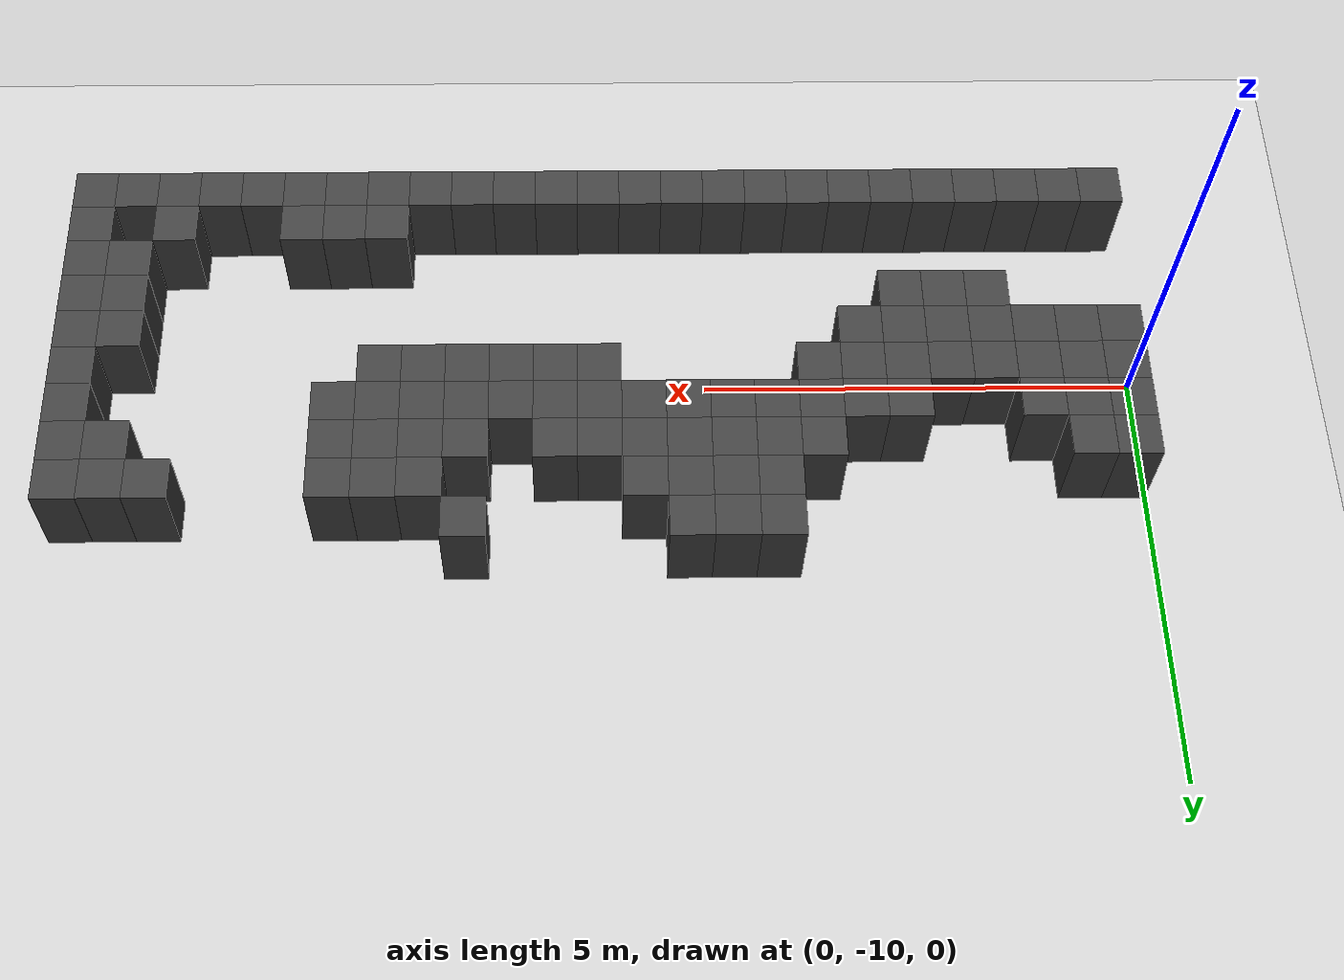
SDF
<sdf version="1.7">
 <world name="map_5937">
  <model name="ground_plane">
   <static>true</static>
   <link name="link">
    <collision name="collision">
     <geometry><plane><normal>0 0 1</normal><size>200 200</size></plane></geometry>
    </collision>
    <visual name="visual">
     <geometry><plane><normal>0 0 1</normal><size>200 200</size></plane></geometry>
     <material><ambient>0.8 0.8 0.8 1</ambient><diffuse>0.8 0.8 0.8 1</diffuse></material>
    </visual>
   </link>
  </model>
  <model name="maze_environment">
   <static>true</static>
   <link name="wall_368">
    <pose>4.250 -7.750 0.500 0 0 0</pose>
    <collision name="col"><geometry><box><size>0.5 0.5 1.0</size></box></geometry></collision>
    <visual name="vis">
     <geometry><box><size>0.5 0.5 1.0</size></box></geometry>
     <material><ambient>0.15 0.15 0.15 1</ambient><diffuse>0.25 0.25 0.25 1</diffuse></material>
    </visual>
   </link>
   <link name="wall_369">
    <pose>4.750 -7.750 0.500 0 0 0</pose>
    <collision name="col"><geometry><box><size>0.5 0.5 1.0</size></box></geometry></collision>
    <visual name="vis">
     <geometry><box><size>0.5 0.5 1.0</size></box></geometry>
     <material><ambient>0.15 0.15 0.15 1</ambient><diffuse>0.25 0.25 0.25 1</diffuse></material>
    </visual>
   </link>
   <link name="wall_370">
    <pose>5.250 -7.750 0.500 0 0 0</pose>
    <collision name="col"><geometry><box><size>0.5 0.5 1.0</size></box></geometry></collision>
    <visual name="vis">
     <geometry><box><size>0.5 0.5 1.0</size></box></geometry>
     <material><ambient>0.15 0.15 0.15 1</ambient><diffuse>0.25 0.25 0.25 1</diffuse></material>
    </visual>
   </link>
   <link name="wall_371">
    <pose>7.750 -7.750 0.500 0 0 0</pose>
    <collision name="col"><geometry><box><size>0.5 0.5 1.0</size></box></geometry></collision>
    <visual name="vis">
     <geometry><box><size>0.5 0.5 1.0</size></box></geometry>
     <material><ambient>0.15 0.15 0.15 1</ambient><diffuse>0.25 0.25 0.25 1</diffuse></material>
    </visual>
   </link>
   <link name="wall_388">
    <pose>4.250 -8.250 0.500 0 0 0</pose>
    <collision name="col"><geometry><box><size>0.5 0.5 1.0</size></box></geometry></collision>
    <visual name="vis">
     <geometry><box><size>0.5 0.5 1.0</size></box></geometry>
     <material><ambient>0.15 0.15 0.15 1</ambient><diffuse>0.25 0.25 0.25 1</diffuse></material>
    </visual>
   </link>
   <link name="wall_389">
    <pose>4.750 -8.250 0.500 0 0 0</pose>
    <collision name="col"><geometry><box><size>0.5 0.5 1.0</size></box></geometry></collision>
    <visual name="vis">
     <geometry><box><size>0.5 0.5 1.0</size></box></geometry>
     <material><ambient>0.15 0.15 0.15 1</ambient><diffuse>0.25 0.25 0.25 1</diffuse></material>
    </visual>
   </link>
   <link name="wall_390">
    <pose>5.250 -8.250 0.500 0 0 0</pose>
    <collision name="col"><geometry><box><size>0.5 0.5 1.0</size></box></geometry></collision>
    <visual name="vis">
     <geometry><box><size>0.5 0.5 1.0</size></box></geometry>
     <material><ambient>0.15 0.15 0.15 1</ambient><diffuse>0.25 0.25 0.25 1</diffuse></material>
    </visual>
   </link>
   <link name="wall_391">
    <pose>5.750 -8.250 0.500 0 0 0</pose>
    <collision name="col"><geometry><box><size>0.5 0.5 1.0</size></box></geometry></collision>
    <visual name="vis">
     <geometry><box><size>0.5 0.5 1.0</size></box></geometry>
     <material><ambient>0.15 0.15 0.15 1</ambient><diffuse>0.25 0.25 0.25 1</diffuse></material>
    </visual>
   </link>
   <link name="wall_392">
    <pose>8.250 -8.250 0.500 0 0 0</pose>
    <collision name="col"><geometry><box><size>0.5 0.5 1.0</size></box></geometry></collision>
    <visual name="vis">
     <geometry><box><size>0.5 0.5 1.0</size></box></geometry>
     <material><ambient>0.15 0.15 0.15 1</ambient><diffuse>0.25 0.25 0.25 1</diffuse></material>
    </visual>
   </link>
   <link name="wall_393">
    <pose>8.750 -8.250 0.500 0 0 0</pose>
    <collision name="col"><geometry><box><size>0.5 0.5 1.0</size></box></geometry></collision>
    <visual name="vis">
     <geometry><box><size>0.5 0.5 1.0</size></box></geometry>
     <material><ambient>0.15 0.15 0.15 1</ambient><diffuse>0.25 0.25 0.25 1</diffuse></material>
    </visual>
   </link>
   <link name="wall_394">
    <pose>9.250 -8.250 0.500 0 0 0</pose>
    <collision name="col"><geometry><box><size>0.5 0.5 1.0</size></box></geometry></collision>
    <visual name="vis">
     <geometry><box><size>0.5 0.5 1.0</size></box></geometry>
     <material><ambient>0.15 0.15 0.15 1</ambient><diffuse>0.25 0.25 0.25 1</diffuse></material>
    </visual>
   </link>
   <link name="wall_395">
    <pose>11.250 -8.250 0.500 0 0 0</pose>
    <collision name="col"><geometry><box><size>0.5 0.5 1.0</size></box></geometry></collision>
    <visual name="vis">
     <geometry><box><size>0.5 0.5 1.0</size></box></geometry>
     <material><ambient>0.15 0.15 0.15 1</ambient><diffuse>0.25 0.25 0.25 1</diffuse></material>
    </visual>
   </link>
   <link name="wall_396">
    <pose>11.750 -8.250 0.500 0 0 0</pose>
    <collision name="col"><geometry><box><size>0.5 0.5 1.0</size></box></geometry></collision>
    <visual name="vis">
     <geometry><box><size>0.5 0.5 1.0</size></box></geometry>
     <material><ambient>0.15 0.15 0.15 1</ambient><diffuse>0.25 0.25 0.25 1</diffuse></material>
    </visual>
   </link>
   <link name="wall_397">
    <pose>12.250 -8.250 0.500 0 0 0</pose>
    <collision name="col"><geometry><box><size>0.5 0.5 1.0</size></box></geometry></collision>
    <visual name="vis">
     <geometry><box><size>0.5 0.5 1.0</size></box></geometry>
     <material><ambient>0.15 0.15 0.15 1</ambient><diffuse>0.25 0.25 0.25 1</diffuse></material>
    </visual>
   </link>
   <link name="wall_403">
    <pose>0.250 -8.750 0.500 0 0 0</pose>
    <collision name="col"><geometry><box><size>0.5 0.5 1.0</size></box></geometry></collision>
    <visual name="vis">
     <geometry><box><size>0.5 0.5 1.0</size></box></geometry>
     <material><ambient>0.15 0.15 0.15 1</ambient><diffuse>0.25 0.25 0.25 1</diffuse></material>
    </visual>
   </link>
   <link name="wall_404">
    <pose>0.750 -8.750 0.500 0 0 0</pose>
    <collision name="col"><geometry><box><size>0.5 0.5 1.0</size></box></geometry></collision>
    <visual name="vis">
     <geometry><box><size>0.5 0.5 1.0</size></box></geometry>
     <material><ambient>0.15 0.15 0.15 1</ambient><diffuse>0.25 0.25 0.25 1</diffuse></material>
    </visual>
   </link>
   <link name="wall_405">
    <pose>3.750 -8.750 0.500 0 0 0</pose>
    <collision name="col"><geometry><box><size>0.5 0.5 1.0</size></box></geometry></collision>
    <visual name="vis">
     <geometry><box><size>0.5 0.5 1.0</size></box></geometry>
     <material><ambient>0.15 0.15 0.15 1</ambient><diffuse>0.25 0.25 0.25 1</diffuse></material>
    </visual>
   </link>
   <link name="wall_406">
    <pose>4.250 -8.750 0.500 0 0 0</pose>
    <collision name="col"><geometry><box><size>0.5 0.5 1.0</size></box></geometry></collision>
    <visual name="vis">
     <geometry><box><size>0.5 0.5 1.0</size></box></geometry>
     <material><ambient>0.15 0.15 0.15 1</ambient><diffuse>0.25 0.25 0.25 1</diffuse></material>
    </visual>
   </link>
   <link name="wall_407">
    <pose>4.750 -8.750 0.500 0 0 0</pose>
    <collision name="col"><geometry><box><size>0.5 0.5 1.0</size></box></geometry></collision>
    <visual name="vis">
     <geometry><box><size>0.5 0.5 1.0</size></box></geometry>
     <material><ambient>0.15 0.15 0.15 1</ambient><diffuse>0.25 0.25 0.25 1</diffuse></material>
    </visual>
   </link>
   <link name="wall_408">
    <pose>5.250 -8.750 0.500 0 0 0</pose>
    <collision name="col"><geometry><box><size>0.5 0.5 1.0</size></box></geometry></collision>
    <visual name="vis">
     <geometry><box><size>0.5 0.5 1.0</size></box></geometry>
     <material><ambient>0.15 0.15 0.15 1</ambient><diffuse>0.25 0.25 0.25 1</diffuse></material>
    </visual>
   </link>
   <link name="wall_409">
    <pose>5.750 -8.750 0.500 0 0 0</pose>
    <collision name="col"><geometry><box><size>0.5 0.5 1.0</size></box></geometry></collision>
    <visual name="vis">
     <geometry><box><size>0.5 0.5 1.0</size></box></geometry>
     <material><ambient>0.15 0.15 0.15 1</ambient><diffuse>0.25 0.25 0.25 1</diffuse></material>
    </visual>
   </link>
   <link name="wall_410">
    <pose>6.250 -8.750 0.500 0 0 0</pose>
    <collision name="col"><geometry><box><size>0.5 0.5 1.0</size></box></geometry></collision>
    <visual name="vis">
     <geometry><box><size>0.5 0.5 1.0</size></box></geometry>
     <material><ambient>0.15 0.15 0.15 1</ambient><diffuse>0.25 0.25 0.25 1</diffuse></material>
    </visual>
   </link>
   <link name="wall_411">
    <pose>6.750 -8.750 0.500 0 0 0</pose>
    <collision name="col"><geometry><box><size>0.5 0.5 1.0</size></box></geometry></collision>
    <visual name="vis">
     <geometry><box><size>0.5 0.5 1.0</size></box></geometry>
     <material><ambient>0.15 0.15 0.15 1</ambient><diffuse>0.25 0.25 0.25 1</diffuse></material>
    </visual>
   </link>
   <link name="wall_412">
    <pose>7.750 -8.750 0.500 0 0 0</pose>
    <collision name="col"><geometry><box><size>0.5 0.5 1.0</size></box></geometry></collision>
    <visual name="vis">
     <geometry><box><size>0.5 0.5 1.0</size></box></geometry>
     <material><ambient>0.15 0.15 0.15 1</ambient><diffuse>0.25 0.25 0.25 1</diffuse></material>
    </visual>
   </link>
   <link name="wall_413">
    <pose>8.250 -8.750 0.500 0 0 0</pose>
    <collision name="col"><geometry><box><size>0.5 0.5 1.0</size></box></geometry></collision>
    <visual name="vis">
     <geometry><box><size>0.5 0.5 1.0</size></box></geometry>
     <material><ambient>0.15 0.15 0.15 1</ambient><diffuse>0.25 0.25 0.25 1</diffuse></material>
    </visual>
   </link>
   <link name="wall_414">
    <pose>8.750 -8.750 0.500 0 0 0</pose>
    <collision name="col"><geometry><box><size>0.5 0.5 1.0</size></box></geometry></collision>
    <visual name="vis">
     <geometry><box><size>0.5 0.5 1.0</size></box></geometry>
     <material><ambient>0.15 0.15 0.15 1</ambient><diffuse>0.25 0.25 0.25 1</diffuse></material>
    </visual>
   </link>
   <link name="wall_415">
    <pose>9.250 -8.750 0.500 0 0 0</pose>
    <collision name="col"><geometry><box><size>0.5 0.5 1.0</size></box></geometry></collision>
    <visual name="vis">
     <geometry><box><size>0.5 0.5 1.0</size></box></geometry>
     <material><ambient>0.15 0.15 0.15 1</ambient><diffuse>0.25 0.25 0.25 1</diffuse></material>
    </visual>
   </link>
   <link name="wall_416">
    <pose>11.750 -8.750 0.500 0 0 0</pose>
    <collision name="col"><geometry><box><size>0.5 0.5 1.0</size></box></geometry></collision>
    <visual name="vis">
     <geometry><box><size>0.5 0.5 1.0</size></box></geometry>
     <material><ambient>0.15 0.15 0.15 1</ambient><diffuse>0.25 0.25 0.25 1</diffuse></material>
    </visual>
   </link>
   <link name="wall_417">
    <pose>12.250 -8.750 0.500 0 0 0</pose>
    <collision name="col"><geometry><box><size>0.5 0.5 1.0</size></box></geometry></collision>
    <visual name="vis">
     <geometry><box><size>0.5 0.5 1.0</size></box></geometry>
     <material><ambient>0.15 0.15 0.15 1</ambient><diffuse>0.25 0.25 0.25 1</diffuse></material>
    </visual>
   </link>
   <link name="wall_420">
    <pose>0.250 -9.250 0.500 0 0 0</pose>
    <collision name="col"><geometry><box><size>0.5 0.5 1.0</size></box></geometry></collision>
    <visual name="vis">
     <geometry><box><size>0.5 0.5 1.0</size></box></geometry>
     <material><ambient>0.15 0.15 0.15 1</ambient><diffuse>0.25 0.25 0.25 1</diffuse></material>
    </visual>
   </link>
   <link name="wall_421">
    <pose>0.750 -9.250 0.500 0 0 0</pose>
    <collision name="col"><geometry><box><size>0.5 0.5 1.0</size></box></geometry></collision>
    <visual name="vis">
     <geometry><box><size>0.5 0.5 1.0</size></box></geometry>
     <material><ambient>0.15 0.15 0.15 1</ambient><diffuse>0.25 0.25 0.25 1</diffuse></material>
    </visual>
   </link>
   <link name="wall_422">
    <pose>1.250 -9.250 0.500 0 0 0</pose>
    <collision name="col"><geometry><box><size>0.5 0.5 1.0</size></box></geometry></collision>
    <visual name="vis">
     <geometry><box><size>0.5 0.5 1.0</size></box></geometry>
     <material><ambient>0.15 0.15 0.15 1</ambient><diffuse>0.25 0.25 0.25 1</diffuse></material>
    </visual>
   </link>
   <link name="wall_423">
    <pose>2.750 -9.250 0.500 0 0 0</pose>
    <collision name="col"><geometry><box><size>0.5 0.5 1.0</size></box></geometry></collision>
    <visual name="vis">
     <geometry><box><size>0.5 0.5 1.0</size></box></geometry>
     <material><ambient>0.15 0.15 0.15 1</ambient><diffuse>0.25 0.25 0.25 1</diffuse></material>
    </visual>
   </link>
   <link name="wall_424">
    <pose>3.250 -9.250 0.500 0 0 0</pose>
    <collision name="col"><geometry><box><size>0.5 0.5 1.0</size></box></geometry></collision>
    <visual name="vis">
     <geometry><box><size>0.5 0.5 1.0</size></box></geometry>
     <material><ambient>0.15 0.15 0.15 1</ambient><diffuse>0.25 0.25 0.25 1</diffuse></material>
    </visual>
   </link>
   <link name="wall_425">
    <pose>3.750 -9.250 0.500 0 0 0</pose>
    <collision name="col"><geometry><box><size>0.5 0.5 1.0</size></box></geometry></collision>
    <visual name="vis">
     <geometry><box><size>0.5 0.5 1.0</size></box></geometry>
     <material><ambient>0.15 0.15 0.15 1</ambient><diffuse>0.25 0.25 0.25 1</diffuse></material>
    </visual>
   </link>
   <link name="wall_426">
    <pose>4.250 -9.250 0.500 0 0 0</pose>
    <collision name="col"><geometry><box><size>0.5 0.5 1.0</size></box></geometry></collision>
    <visual name="vis">
     <geometry><box><size>0.5 0.5 1.0</size></box></geometry>
     <material><ambient>0.15 0.15 0.15 1</ambient><diffuse>0.25 0.25 0.25 1</diffuse></material>
    </visual>
   </link>
   <link name="wall_427">
    <pose>4.750 -9.250 0.500 0 0 0</pose>
    <collision name="col"><geometry><box><size>0.5 0.5 1.0</size></box></geometry></collision>
    <visual name="vis">
     <geometry><box><size>0.5 0.5 1.0</size></box></geometry>
     <material><ambient>0.15 0.15 0.15 1</ambient><diffuse>0.25 0.25 0.25 1</diffuse></material>
    </visual>
   </link>
   <link name="wall_428">
    <pose>5.250 -9.250 0.500 0 0 0</pose>
    <collision name="col"><geometry><box><size>0.5 0.5 1.0</size></box></geometry></collision>
    <visual name="vis">
     <geometry><box><size>0.5 0.5 1.0</size></box></geometry>
     <material><ambient>0.15 0.15 0.15 1</ambient><diffuse>0.25 0.25 0.25 1</diffuse></material>
    </visual>
   </link>
   <link name="wall_429">
    <pose>5.750 -9.250 0.500 0 0 0</pose>
    <collision name="col"><geometry><box><size>0.5 0.5 1.0</size></box></geometry></collision>
    <visual name="vis">
     <geometry><box><size>0.5 0.5 1.0</size></box></geometry>
     <material><ambient>0.15 0.15 0.15 1</ambient><diffuse>0.25 0.25 0.25 1</diffuse></material>
    </visual>
   </link>
   <link name="wall_430">
    <pose>6.250 -9.250 0.500 0 0 0</pose>
    <collision name="col"><geometry><box><size>0.5 0.5 1.0</size></box></geometry></collision>
    <visual name="vis">
     <geometry><box><size>0.5 0.5 1.0</size></box></geometry>
     <material><ambient>0.15 0.15 0.15 1</ambient><diffuse>0.25 0.25 0.25 1</diffuse></material>
    </visual>
   </link>
   <link name="wall_431">
    <pose>6.750 -9.250 0.500 0 0 0</pose>
    <collision name="col"><geometry><box><size>0.5 0.5 1.0</size></box></geometry></collision>
    <visual name="vis">
     <geometry><box><size>0.5 0.5 1.0</size></box></geometry>
     <material><ambient>0.15 0.15 0.15 1</ambient><diffuse>0.25 0.25 0.25 1</diffuse></material>
    </visual>
   </link>
   <link name="wall_432">
    <pose>7.250 -9.250 0.500 0 0 0</pose>
    <collision name="col"><geometry><box><size>0.5 0.5 1.0</size></box></geometry></collision>
    <visual name="vis">
     <geometry><box><size>0.5 0.5 1.0</size></box></geometry>
     <material><ambient>0.15 0.15 0.15 1</ambient><diffuse>0.25 0.25 0.25 1</diffuse></material>
    </visual>
   </link>
   <link name="wall_433">
    <pose>7.750 -9.250 0.500 0 0 0</pose>
    <collision name="col"><geometry><box><size>0.5 0.5 1.0</size></box></geometry></collision>
    <visual name="vis">
     <geometry><box><size>0.5 0.5 1.0</size></box></geometry>
     <material><ambient>0.15 0.15 0.15 1</ambient><diffuse>0.25 0.25 0.25 1</diffuse></material>
    </visual>
   </link>
   <link name="wall_434">
    <pose>8.250 -9.250 0.500 0 0 0</pose>
    <collision name="col"><geometry><box><size>0.5 0.5 1.0</size></box></geometry></collision>
    <visual name="vis">
     <geometry><box><size>0.5 0.5 1.0</size></box></geometry>
     <material><ambient>0.15 0.15 0.15 1</ambient><diffuse>0.25 0.25 0.25 1</diffuse></material>
    </visual>
   </link>
   <link name="wall_435">
    <pose>8.750 -9.250 0.500 0 0 0</pose>
    <collision name="col"><geometry><box><size>0.5 0.5 1.0</size></box></geometry></collision>
    <visual name="vis">
     <geometry><box><size>0.5 0.5 1.0</size></box></geometry>
     <material><ambient>0.15 0.15 0.15 1</ambient><diffuse>0.25 0.25 0.25 1</diffuse></material>
    </visual>
   </link>
   <link name="wall_436">
    <pose>9.250 -9.250 0.500 0 0 0</pose>
    <collision name="col"><geometry><box><size>0.5 0.5 1.0</size></box></geometry></collision>
    <visual name="vis">
     <geometry><box><size>0.5 0.5 1.0</size></box></geometry>
     <material><ambient>0.15 0.15 0.15 1</ambient><diffuse>0.25 0.25 0.25 1</diffuse></material>
    </visual>
   </link>
   <link name="wall_437">
    <pose>12.250 -9.250 0.500 0 0 0</pose>
    <collision name="col"><geometry><box><size>0.5 0.5 1.0</size></box></geometry></collision>
    <visual name="vis">
     <geometry><box><size>0.5 0.5 1.0</size></box></geometry>
     <material><ambient>0.15 0.15 0.15 1</ambient><diffuse>0.25 0.25 0.25 1</diffuse></material>
    </visual>
   </link>
   <link name="wall_440">
    <pose>0.250 -9.750 0.500 0 0 0</pose>
    <collision name="col"><geometry><box><size>0.5 0.5 1.0</size></box></geometry></collision>
    <visual name="vis">
     <geometry><box><size>0.5 0.5 1.0</size></box></geometry>
     <material><ambient>0.15 0.15 0.15 1</ambient><diffuse>0.25 0.25 0.25 1</diffuse></material>
    </visual>
   </link>
   <link name="wall_441">
    <pose>0.750 -9.750 0.500 0 0 0</pose>
    <collision name="col"><geometry><box><size>0.5 0.5 1.0</size></box></geometry></collision>
    <visual name="vis">
     <geometry><box><size>0.5 0.5 1.0</size></box></geometry>
     <material><ambient>0.15 0.15 0.15 1</ambient><diffuse>0.25 0.25 0.25 1</diffuse></material>
    </visual>
   </link>
   <link name="wall_442">
    <pose>1.250 -9.750 0.500 0 0 0</pose>
    <collision name="col"><geometry><box><size>0.5 0.5 1.0</size></box></geometry></collision>
    <visual name="vis">
     <geometry><box><size>0.5 0.5 1.0</size></box></geometry>
     <material><ambient>0.15 0.15 0.15 1</ambient><diffuse>0.25 0.25 0.25 1</diffuse></material>
    </visual>
   </link>
   <link name="wall_443">
    <pose>1.750 -9.750 0.500 0 0 0</pose>
    <collision name="col"><geometry><box><size>0.5 0.5 1.0</size></box></geometry></collision>
    <visual name="vis">
     <geometry><box><size>0.5 0.5 1.0</size></box></geometry>
     <material><ambient>0.15 0.15 0.15 1</ambient><diffuse>0.25 0.25 0.25 1</diffuse></material>
    </visual>
   </link>
   <link name="wall_444">
    <pose>2.250 -9.750 0.500 0 0 0</pose>
    <collision name="col"><geometry><box><size>0.5 0.5 1.0</size></box></geometry></collision>
    <visual name="vis">
     <geometry><box><size>0.5 0.5 1.0</size></box></geometry>
     <material><ambient>0.15 0.15 0.15 1</ambient><diffuse>0.25 0.25 0.25 1</diffuse></material>
    </visual>
   </link>
   <link name="wall_445">
    <pose>2.750 -9.750 0.500 0 0 0</pose>
    <collision name="col"><geometry><box><size>0.5 0.5 1.0</size></box></geometry></collision>
    <visual name="vis">
     <geometry><box><size>0.5 0.5 1.0</size></box></geometry>
     <material><ambient>0.15 0.15 0.15 1</ambient><diffuse>0.25 0.25 0.25 1</diffuse></material>
    </visual>
   </link>
   <link name="wall_446">
    <pose>3.250 -9.750 0.500 0 0 0</pose>
    <collision name="col"><geometry><box><size>0.5 0.5 1.0</size></box></geometry></collision>
    <visual name="vis">
     <geometry><box><size>0.5 0.5 1.0</size></box></geometry>
     <material><ambient>0.15 0.15 0.15 1</ambient><diffuse>0.25 0.25 0.25 1</diffuse></material>
    </visual>
   </link>
   <link name="wall_447">
    <pose>3.750 -9.750 0.500 0 0 0</pose>
    <collision name="col"><geometry><box><size>0.5 0.5 1.0</size></box></geometry></collision>
    <visual name="vis">
     <geometry><box><size>0.5 0.5 1.0</size></box></geometry>
     <material><ambient>0.15 0.15 0.15 1</ambient><diffuse>0.25 0.25 0.25 1</diffuse></material>
    </visual>
   </link>
   <link name="wall_448">
    <pose>6.250 -9.750 0.500 0 0 0</pose>
    <collision name="col"><geometry><box><size>0.5 0.5 1.0</size></box></geometry></collision>
    <visual name="vis">
     <geometry><box><size>0.5 0.5 1.0</size></box></geometry>
     <material><ambient>0.15 0.15 0.15 1</ambient><diffuse>0.25 0.25 0.25 1</diffuse></material>
    </visual>
   </link>
   <link name="wall_449">
    <pose>6.750 -9.750 0.500 0 0 0</pose>
    <collision name="col"><geometry><box><size>0.5 0.5 1.0</size></box></geometry></collision>
    <visual name="vis">
     <geometry><box><size>0.5 0.5 1.0</size></box></geometry>
     <material><ambient>0.15 0.15 0.15 1</ambient><diffuse>0.25 0.25 0.25 1</diffuse></material>
    </visual>
   </link>
   <link name="wall_450">
    <pose>7.250 -9.750 0.500 0 0 0</pose>
    <collision name="col"><geometry><box><size>0.5 0.5 1.0</size></box></geometry></collision>
    <visual name="vis">
     <geometry><box><size>0.5 0.5 1.0</size></box></geometry>
     <material><ambient>0.15 0.15 0.15 1</ambient><diffuse>0.25 0.25 0.25 1</diffuse></material>
    </visual>
   </link>
   <link name="wall_451">
    <pose>7.750 -9.750 0.500 0 0 0</pose>
    <collision name="col"><geometry><box><size>0.5 0.5 1.0</size></box></geometry></collision>
    <visual name="vis">
     <geometry><box><size>0.5 0.5 1.0</size></box></geometry>
     <material><ambient>0.15 0.15 0.15 1</ambient><diffuse>0.25 0.25 0.25 1</diffuse></material>
    </visual>
   </link>
   <link name="wall_452">
    <pose>8.250 -9.750 0.500 0 0 0</pose>
    <collision name="col"><geometry><box><size>0.5 0.5 1.0</size></box></geometry></collision>
    <visual name="vis">
     <geometry><box><size>0.5 0.5 1.0</size></box></geometry>
     <material><ambient>0.15 0.15 0.15 1</ambient><diffuse>0.25 0.25 0.25 1</diffuse></material>
    </visual>
   </link>
   <link name="wall_453">
    <pose>8.750 -9.750 0.500 0 0 0</pose>
    <collision name="col"><geometry><box><size>0.5 0.5 1.0</size></box></geometry></collision>
    <visual name="vis">
     <geometry><box><size>0.5 0.5 1.0</size></box></geometry>
     <material><ambient>0.15 0.15 0.15 1</ambient><diffuse>0.25 0.25 0.25 1</diffuse></material>
    </visual>
   </link>
   <link name="wall_454">
    <pose>12.250 -9.750 0.500 0 0 0</pose>
    <collision name="col"><geometry><box><size>0.5 0.5 1.0</size></box></geometry></collision>
    <visual name="vis">
     <geometry><box><size>0.5 0.5 1.0</size></box></geometry>
     <material><ambient>0.15 0.15 0.15 1</ambient><diffuse>0.25 0.25 0.25 1</diffuse></material>
    </visual>
   </link>
   <link name="wall_457">
    <pose>0.250 -10.250 0.500 0 0 0</pose>
    <collision name="col"><geometry><box><size>0.5 0.5 1.0</size></box></geometry></collision>
    <visual name="vis">
     <geometry><box><size>0.5 0.5 1.0</size></box></geometry>
     <material><ambient>0.15 0.15 0.15 1</ambient><diffuse>0.25 0.25 0.25 1</diffuse></material>
    </visual>
   </link>
   <link name="wall_458">
    <pose>0.750 -10.250 0.500 0 0 0</pose>
    <collision name="col"><geometry><box><size>0.5 0.5 1.0</size></box></geometry></collision>
    <visual name="vis">
     <geometry><box><size>0.5 0.5 1.0</size></box></geometry>
     <material><ambient>0.15 0.15 0.15 1</ambient><diffuse>0.25 0.25 0.25 1</diffuse></material>
    </visual>
   </link>
   <link name="wall_459">
    <pose>1.250 -10.250 0.500 0 0 0</pose>
    <collision name="col"><geometry><box><size>0.5 0.5 1.0</size></box></geometry></collision>
    <visual name="vis">
     <geometry><box><size>0.5 0.5 1.0</size></box></geometry>
     <material><ambient>0.15 0.15 0.15 1</ambient><diffuse>0.25 0.25 0.25 1</diffuse></material>
    </visual>
   </link>
   <link name="wall_460">
    <pose>1.750 -10.250 0.500 0 0 0</pose>
    <collision name="col"><geometry><box><size>0.5 0.5 1.0</size></box></geometry></collision>
    <visual name="vis">
     <geometry><box><size>0.5 0.5 1.0</size></box></geometry>
     <material><ambient>0.15 0.15 0.15 1</ambient><diffuse>0.25 0.25 0.25 1</diffuse></material>
    </visual>
   </link>
   <link name="wall_461">
    <pose>2.250 -10.250 0.500 0 0 0</pose>
    <collision name="col"><geometry><box><size>0.5 0.5 1.0</size></box></geometry></collision>
    <visual name="vis">
     <geometry><box><size>0.5 0.5 1.0</size></box></geometry>
     <material><ambient>0.15 0.15 0.15 1</ambient><diffuse>0.25 0.25 0.25 1</diffuse></material>
    </visual>
   </link>
   <link name="wall_462">
    <pose>2.750 -10.250 0.500 0 0 0</pose>
    <collision name="col"><geometry><box><size>0.5 0.5 1.0</size></box></geometry></collision>
    <visual name="vis">
     <geometry><box><size>0.5 0.5 1.0</size></box></geometry>
     <material><ambient>0.15 0.15 0.15 1</ambient><diffuse>0.25 0.25 0.25 1</diffuse></material>
    </visual>
   </link>
   <link name="wall_463">
    <pose>3.250 -10.250 0.500 0 0 0</pose>
    <collision name="col"><geometry><box><size>0.5 0.5 1.0</size></box></geometry></collision>
    <visual name="vis">
     <geometry><box><size>0.5 0.5 1.0</size></box></geometry>
     <material><ambient>0.15 0.15 0.15 1</ambient><diffuse>0.25 0.25 0.25 1</diffuse></material>
    </visual>
   </link>
   <link name="wall_464">
    <pose>11.750 -10.250 0.500 0 0 0</pose>
    <collision name="col"><geometry><box><size>0.5 0.5 1.0</size></box></geometry></collision>
    <visual name="vis">
     <geometry><box><size>0.5 0.5 1.0</size></box></geometry>
     <material><ambient>0.15 0.15 0.15 1</ambient><diffuse>0.25 0.25 0.25 1</diffuse></material>
    </visual>
   </link>
   <link name="wall_465">
    <pose>12.250 -10.250 0.500 0 0 0</pose>
    <collision name="col"><geometry><box><size>0.5 0.5 1.0</size></box></geometry></collision>
    <visual name="vis">
     <geometry><box><size>0.5 0.5 1.0</size></box></geometry>
     <material><ambient>0.15 0.15 0.15 1</ambient><diffuse>0.25 0.25 0.25 1</diffuse></material>
    </visual>
   </link>
   <link name="wall_470">
    <pose>1.750 -10.750 0.500 0 0 0</pose>
    <collision name="col"><geometry><box><size>0.5 0.5 1.0</size></box></geometry></collision>
    <visual name="vis">
     <geometry><box><size>0.5 0.5 1.0</size></box></geometry>
     <material><ambient>0.15 0.15 0.15 1</ambient><diffuse>0.25 0.25 0.25 1</diffuse></material>
    </visual>
   </link>
   <link name="wall_471">
    <pose>2.250 -10.750 0.500 0 0 0</pose>
    <collision name="col"><geometry><box><size>0.5 0.5 1.0</size></box></geometry></collision>
    <visual name="vis">
     <geometry><box><size>0.5 0.5 1.0</size></box></geometry>
     <material><ambient>0.15 0.15 0.15 1</ambient><diffuse>0.25 0.25 0.25 1</diffuse></material>
    </visual>
   </link>
   <link name="wall_472">
    <pose>2.750 -10.750 0.500 0 0 0</pose>
    <collision name="col"><geometry><box><size>0.5 0.5 1.0</size></box></geometry></collision>
    <visual name="vis">
     <geometry><box><size>0.5 0.5 1.0</size></box></geometry>
     <material><ambient>0.15 0.15 0.15 1</ambient><diffuse>0.25 0.25 0.25 1</diffuse></material>
    </visual>
   </link>
   <link name="wall_473">
    <pose>11.750 -10.750 0.500 0 0 0</pose>
    <collision name="col"><geometry><box><size>0.5 0.5 1.0</size></box></geometry></collision>
    <visual name="vis">
     <geometry><box><size>0.5 0.5 1.0</size></box></geometry>
     <material><ambient>0.15 0.15 0.15 1</ambient><diffuse>0.25 0.25 0.25 1</diffuse></material>
    </visual>
   </link>
   <link name="wall_474">
    <pose>12.250 -10.750 0.500 0 0 0</pose>
    <collision name="col"><geometry><box><size>0.5 0.5 1.0</size></box></geometry></collision>
    <visual name="vis">
     <geometry><box><size>0.5 0.5 1.0</size></box></geometry>
     <material><ambient>0.15 0.15 0.15 1</ambient><diffuse>0.25 0.25 0.25 1</diffuse></material>
    </visual>
   </link>
   <link name="wall_479">
    <pose>11.750 -11.250 0.500 0 0 0</pose>
    <collision name="col"><geometry><box><size>0.5 0.5 1.0</size></box></geometry></collision>
    <visual name="vis">
     <geometry><box><size>0.5 0.5 1.0</size></box></geometry>
     <material><ambient>0.15 0.15 0.15 1</ambient><diffuse>0.25 0.25 0.25 1</diffuse></material>
    </visual>
   </link>
   <link name="wall_480">
    <pose>12.250 -11.250 0.500 0 0 0</pose>
    <collision name="col"><geometry><box><size>0.5 0.5 1.0</size></box></geometry></collision>
    <visual name="vis">
     <geometry><box><size>0.5 0.5 1.0</size></box></geometry>
     <material><ambient>0.15 0.15 0.15 1</ambient><diffuse>0.25 0.25 0.25 1</diffuse></material>
    </visual>
   </link>
   <link name="wall_488">
    <pose>8.750 -11.750 0.500 0 0 0</pose>
    <collision name="col"><geometry><box><size>0.5 0.5 1.0</size></box></geometry></collision>
    <visual name="vis">
     <geometry><box><size>0.5 0.5 1.0</size></box></geometry>
     <material><ambient>0.15 0.15 0.15 1</ambient><diffuse>0.25 0.25 0.25 1</diffuse></material>
    </visual>
   </link>
   <link name="wall_489">
    <pose>9.250 -11.750 0.500 0 0 0</pose>
    <collision name="col"><geometry><box><size>0.5 0.5 1.0</size></box></geometry></collision>
    <visual name="vis">
     <geometry><box><size>0.5 0.5 1.0</size></box></geometry>
     <material><ambient>0.15 0.15 0.15 1</ambient><diffuse>0.25 0.25 0.25 1</diffuse></material>
    </visual>
   </link>
   <link name="wall_490">
    <pose>9.750 -11.750 0.500 0 0 0</pose>
    <collision name="col"><geometry><box><size>0.5 0.5 1.0</size></box></geometry></collision>
    <visual name="vis">
     <geometry><box><size>0.5 0.5 1.0</size></box></geometry>
     <material><ambient>0.15 0.15 0.15 1</ambient><diffuse>0.25 0.25 0.25 1</diffuse></material>
    </visual>
   </link>
   <link name="wall_491">
    <pose>11.250 -11.750 0.500 0 0 0</pose>
    <collision name="col"><geometry><box><size>0.5 0.5 1.0</size></box></geometry></collision>
    <visual name="vis">
     <geometry><box><size>0.5 0.5 1.0</size></box></geometry>
     <material><ambient>0.15 0.15 0.15 1</ambient><diffuse>0.25 0.25 0.25 1</diffuse></material>
    </visual>
   </link>
   <link name="wall_492">
    <pose>12.250 -11.750 0.500 0 0 0</pose>
    <collision name="col"><geometry><box><size>0.5 0.5 1.0</size></box></geometry></collision>
    <visual name="vis">
     <geometry><box><size>0.5 0.5 1.0</size></box></geometry>
     <material><ambient>0.15 0.15 0.15 1</ambient><diffuse>0.25 0.25 0.25 1</diffuse></material>
    </visual>
   </link>
   <link name="wall_518">
    <pose>0.250 -12.250 0.500 0 0 0</pose>
    <collision name="col"><geometry><box><size>0.5 0.5 1.0</size></box></geometry></collision>
    <visual name="vis">
     <geometry><box><size>0.5 0.5 1.0</size></box></geometry>
     <material><ambient>0.15 0.15 0.15 1</ambient><diffuse>0.25 0.25 0.25 1</diffuse></material>
    </visual>
   </link>
   <link name="wall_519">
    <pose>0.750 -12.250 0.500 0 0 0</pose>
    <collision name="col"><geometry><box><size>0.5 0.5 1.0</size></box></geometry></collision>
    <visual name="vis">
     <geometry><box><size>0.5 0.5 1.0</size></box></geometry>
     <material><ambient>0.15 0.15 0.15 1</ambient><diffuse>0.25 0.25 0.25 1</diffuse></material>
    </visual>
   </link>
   <link name="wall_520">
    <pose>1.250 -12.250 0.500 0 0 0</pose>
    <collision name="col"><geometry><box><size>0.5 0.5 1.0</size></box></geometry></collision>
    <visual name="vis">
     <geometry><box><size>0.5 0.5 1.0</size></box></geometry>
     <material><ambient>0.15 0.15 0.15 1</ambient><diffuse>0.25 0.25 0.25 1</diffuse></material>
    </visual>
   </link>
   <link name="wall_521">
    <pose>1.750 -12.250 0.500 0 0 0</pose>
    <collision name="col"><geometry><box><size>0.5 0.5 1.0</size></box></geometry></collision>
    <visual name="vis">
     <geometry><box><size>0.5 0.5 1.0</size></box></geometry>
     <material><ambient>0.15 0.15 0.15 1</ambient><diffuse>0.25 0.25 0.25 1</diffuse></material>
    </visual>
   </link>
   <link name="wall_522">
    <pose>2.250 -12.250 0.500 0 0 0</pose>
    <collision name="col"><geometry><box><size>0.5 0.5 1.0</size></box></geometry></collision>
    <visual name="vis">
     <geometry><box><size>0.5 0.5 1.0</size></box></geometry>
     <material><ambient>0.15 0.15 0.15 1</ambient><diffuse>0.25 0.25 0.25 1</diffuse></material>
    </visual>
   </link>
   <link name="wall_523">
    <pose>2.750 -12.250 0.500 0 0 0</pose>
    <collision name="col"><geometry><box><size>0.5 0.5 1.0</size></box></geometry></collision>
    <visual name="vis">
     <geometry><box><size>0.5 0.5 1.0</size></box></geometry>
     <material><ambient>0.15 0.15 0.15 1</ambient><diffuse>0.25 0.25 0.25 1</diffuse></material>
    </visual>
   </link>
   <link name="wall_524">
    <pose>3.250 -12.250 0.500 0 0 0</pose>
    <collision name="col"><geometry><box><size>0.5 0.5 1.0</size></box></geometry></collision>
    <visual name="vis">
     <geometry><box><size>0.5 0.5 1.0</size></box></geometry>
     <material><ambient>0.15 0.15 0.15 1</ambient><diffuse>0.25 0.25 0.25 1</diffuse></material>
    </visual>
   </link>
   <link name="wall_525">
    <pose>3.750 -12.250 0.500 0 0 0</pose>
    <collision name="col"><geometry><box><size>0.5 0.5 1.0</size></box></geometry></collision>
    <visual name="vis">
     <geometry><box><size>0.5 0.5 1.0</size></box></geometry>
     <material><ambient>0.15 0.15 0.15 1</ambient><diffuse>0.25 0.25 0.25 1</diffuse></material>
    </visual>
   </link>
   <link name="wall_526">
    <pose>4.250 -12.250 0.500 0 0 0</pose>
    <collision name="col"><geometry><box><size>0.5 0.5 1.0</size></box></geometry></collision>
    <visual name="vis">
     <geometry><box><size>0.5 0.5 1.0</size></box></geometry>
     <material><ambient>0.15 0.15 0.15 1</ambient><diffuse>0.25 0.25 0.25 1</diffuse></material>
    </visual>
   </link>
   <link name="wall_527">
    <pose>4.750 -12.250 0.500 0 0 0</pose>
    <collision name="col"><geometry><box><size>0.5 0.5 1.0</size></box></geometry></collision>
    <visual name="vis">
     <geometry><box><size>0.5 0.5 1.0</size></box></geometry>
     <material><ambient>0.15 0.15 0.15 1</ambient><diffuse>0.25 0.25 0.25 1</diffuse></material>
    </visual>
   </link>
   <link name="wall_528">
    <pose>5.250 -12.250 0.500 0 0 0</pose>
    <collision name="col"><geometry><box><size>0.5 0.5 1.0</size></box></geometry></collision>
    <visual name="vis">
     <geometry><box><size>0.5 0.5 1.0</size></box></geometry>
     <material><ambient>0.15 0.15 0.15 1</ambient><diffuse>0.25 0.25 0.25 1</diffuse></material>
    </visual>
   </link>
   <link name="wall_529">
    <pose>5.750 -12.250 0.500 0 0 0</pose>
    <collision name="col"><geometry><box><size>0.5 0.5 1.0</size></box></geometry></collision>
    <visual name="vis">
     <geometry><box><size>0.5 0.5 1.0</size></box></geometry>
     <material><ambient>0.15 0.15 0.15 1</ambient><diffuse>0.25 0.25 0.25 1</diffuse></material>
    </visual>
   </link>
   <link name="wall_530">
    <pose>6.250 -12.250 0.500 0 0 0</pose>
    <collision name="col"><geometry><box><size>0.5 0.5 1.0</size></box></geometry></collision>
    <visual name="vis">
     <geometry><box><size>0.5 0.5 1.0</size></box></geometry>
     <material><ambient>0.15 0.15 0.15 1</ambient><diffuse>0.25 0.25 0.25 1</diffuse></material>
    </visual>
   </link>
   <link name="wall_531">
    <pose>6.750 -12.250 0.500 0 0 0</pose>
    <collision name="col"><geometry><box><size>0.5 0.5 1.0</size></box></geometry></collision>
    <visual name="vis">
     <geometry><box><size>0.5 0.5 1.0</size></box></geometry>
     <material><ambient>0.15 0.15 0.15 1</ambient><diffuse>0.25 0.25 0.25 1</diffuse></material>
    </visual>
   </link>
   <link name="wall_532">
    <pose>7.250 -12.250 0.500 0 0 0</pose>
    <collision name="col"><geometry><box><size>0.5 0.5 1.0</size></box></geometry></collision>
    <visual name="vis">
     <geometry><box><size>0.5 0.5 1.0</size></box></geometry>
     <material><ambient>0.15 0.15 0.15 1</ambient><diffuse>0.25 0.25 0.25 1</diffuse></material>
    </visual>
   </link>
   <link name="wall_533">
    <pose>7.750 -12.250 0.500 0 0 0</pose>
    <collision name="col"><geometry><box><size>0.5 0.5 1.0</size></box></geometry></collision>
    <visual name="vis">
     <geometry><box><size>0.5 0.5 1.0</size></box></geometry>
     <material><ambient>0.15 0.15 0.15 1</ambient><diffuse>0.25 0.25 0.25 1</diffuse></material>
    </visual>
   </link>
   <link name="wall_534">
    <pose>8.250 -12.250 0.500 0 0 0</pose>
    <collision name="col"><geometry><box><size>0.5 0.5 1.0</size></box></geometry></collision>
    <visual name="vis">
     <geometry><box><size>0.5 0.5 1.0</size></box></geometry>
     <material><ambient>0.15 0.15 0.15 1</ambient><diffuse>0.25 0.25 0.25 1</diffuse></material>
    </visual>
   </link>
   <link name="wall_535">
    <pose>8.750 -12.250 0.500 0 0 0</pose>
    <collision name="col"><geometry><box><size>0.5 0.5 1.0</size></box></geometry></collision>
    <visual name="vis">
     <geometry><box><size>0.5 0.5 1.0</size></box></geometry>
     <material><ambient>0.15 0.15 0.15 1</ambient><diffuse>0.25 0.25 0.25 1</diffuse></material>
    </visual>
   </link>
   <link name="wall_536">
    <pose>9.250 -12.250 0.500 0 0 0</pose>
    <collision name="col"><geometry><box><size>0.5 0.5 1.0</size></box></geometry></collision>
    <visual name="vis">
     <geometry><box><size>0.5 0.5 1.0</size></box></geometry>
     <material><ambient>0.15 0.15 0.15 1</ambient><diffuse>0.25 0.25 0.25 1</diffuse></material>
    </visual>
   </link>
   <link name="wall_537">
    <pose>9.750 -12.250 0.500 0 0 0</pose>
    <collision name="col"><geometry><box><size>0.5 0.5 1.0</size></box></geometry></collision>
    <visual name="vis">
     <geometry><box><size>0.5 0.5 1.0</size></box></geometry>
     <material><ambient>0.15 0.15 0.15 1</ambient><diffuse>0.25 0.25 0.25 1</diffuse></material>
    </visual>
   </link>
   <link name="wall_538">
    <pose>10.250 -12.250 0.500 0 0 0</pose>
    <collision name="col"><geometry><box><size>0.5 0.5 1.0</size></box></geometry></collision>
    <visual name="vis">
     <geometry><box><size>0.5 0.5 1.0</size></box></geometry>
     <material><ambient>0.15 0.15 0.15 1</ambient><diffuse>0.25 0.25 0.25 1</diffuse></material>
    </visual>
   </link>
   <link name="wall_539">
    <pose>10.750 -12.250 0.500 0 0 0</pose>
    <collision name="col"><geometry><box><size>0.5 0.5 1.0</size></box></geometry></collision>
    <visual name="vis">
     <geometry><box><size>0.5 0.5 1.0</size></box></geometry>
     <material><ambient>0.15 0.15 0.15 1</ambient><diffuse>0.25 0.25 0.25 1</diffuse></material>
    </visual>
   </link>
   <link name="wall_540">
    <pose>11.250 -12.250 0.500 0 0 0</pose>
    <collision name="col"><geometry><box><size>0.5 0.5 1.0</size></box></geometry></collision>
    <visual name="vis">
     <geometry><box><size>0.5 0.5 1.0</size></box></geometry>
     <material><ambient>0.15 0.15 0.15 1</ambient><diffuse>0.25 0.25 0.25 1</diffuse></material>
    </visual>
   </link>
   <link name="wall_541">
    <pose>11.750 -12.250 0.500 0 0 0</pose>
    <collision name="col"><geometry><box><size>0.5 0.5 1.0</size></box></geometry></collision>
    <visual name="vis">
     <geometry><box><size>0.5 0.5 1.0</size></box></geometry>
     <material><ambient>0.15 0.15 0.15 1</ambient><diffuse>0.25 0.25 0.25 1</diffuse></material>
    </visual>
   </link>
   <link name="wall_542">
    <pose>12.250 -12.250 0.500 0 0 0</pose>
    <collision name="col"><geometry><box><size>0.5 0.5 1.0</size></box></geometry></collision>
    <visual name="vis">
     <geometry><box><size>0.5 0.5 1.0</size></box></geometry>
     <material><ambient>0.15 0.15 0.15 1</ambient><diffuse>0.25 0.25 0.25 1</diffuse></material>
    </visual>
   </link>
   <link name="goal_zone">
    <pose>11.750 -11.750 0.005 0 0 0</pose>
    <visual name="vis">
     <geometry><box><size>0.45 0.45 0.01</size></box></geometry>
     <material>
      <ambient>1.0 0.0 0.0 1</ambient>
      <diffuse>1.0 0.0 0.0 1</diffuse>
      <emissive>0.60 0.00 0.00 1</emissive>
     </material>
    </visual>
   </link>
  </model>
 </world>
</sdf>
